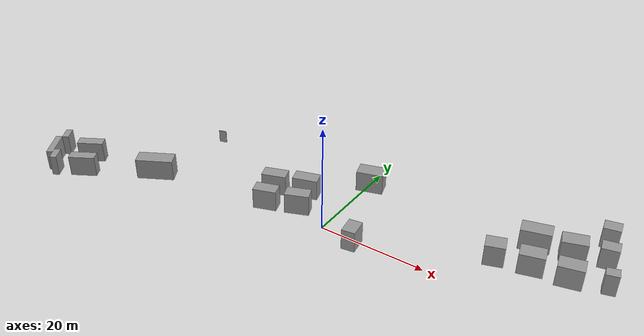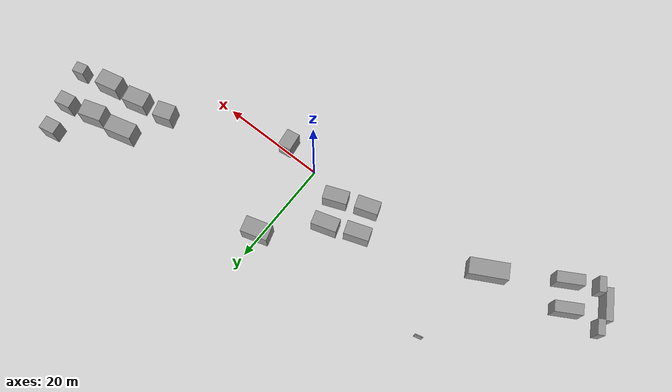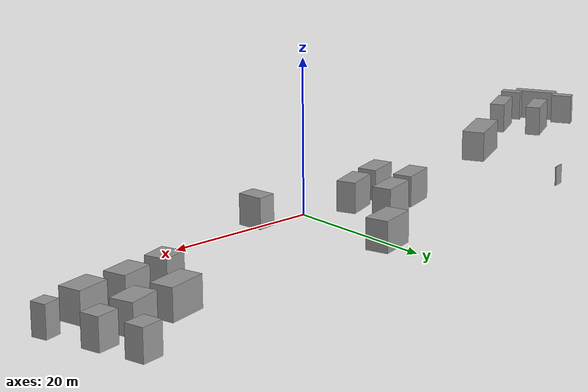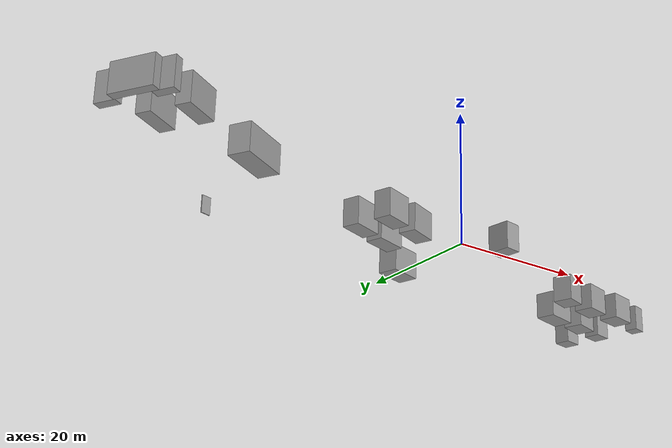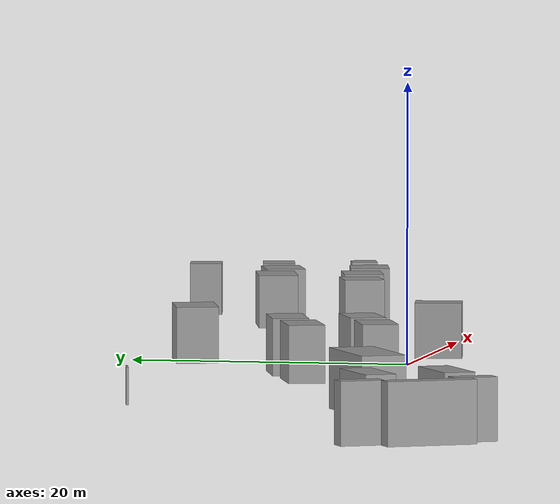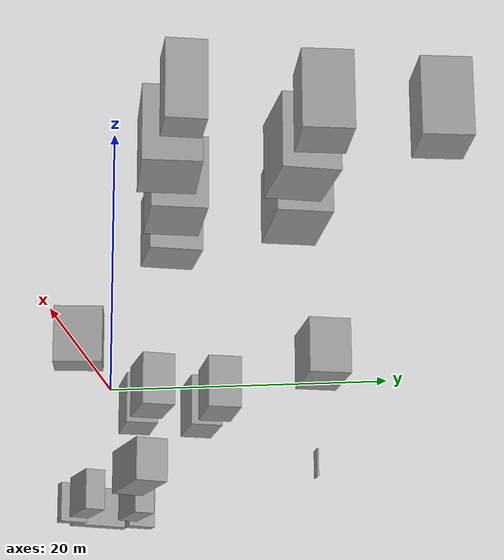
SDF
<?xml version='1.0'?>
<sdf version='1.7'>
  <model name='v0'>
    <pose>-4.57686 5.11966 0 0 -0 0</pose>
    <link name='Wall_16'>
      <collision name='Wall_16_Collision'>
        <geometry>
          <box>
            <size>2.80067 1.25 4</size>
          </box>
        </geometry>
        <pose>0 0 2 0 -0 0</pose>
      </collision>
      <visual name='Wall_16_Visual'>
        <pose>0 0 2 0 -0 0</pose>
        <geometry>
          <box>
            <size>2.80067 1.25 4</size>
          </box>
        </geometry>
        <material>
          <script>
            <uri>file://media/materials/scripts/gazebo.material</uri>
            <name>Gazebo/Grey</name>
          </script>
          <ambient>1 1 1 1</ambient>
        </material>
        <meta>
          <layer>0</layer>
        </meta>
      </visual>
      <pose>-47.8196 -19.0662 0 0 -0 2.09418</pose>
    </link>
    <link name='Wall_18'>
      <collision name='Wall_18_Collision'>
        <geometry>
          <box>
            <size>2.80018 1.25 4</size>
          </box>
        </geometry>
        <pose>0 0 2 0 -0 0</pose>
      </collision>
      <visual name='Wall_18_Visual'>
        <pose>0 0 2 0 -0 0</pose>
        <geometry>
          <box>
            <size>2.80018 1.25 4</size>
          </box>
        </geometry>
        <material>
          <script>
            <uri>file://media/materials/scripts/gazebo.material</uri>
            <name>Gazebo/Grey</name>
          </script>
          <ambient>1 1 1 1</ambient>
        </material>
        <meta>
          <layer>0</layer>
        </meta>
      </visual>
      <pose>-51.5376 -12.6602 0 0 -0 2.09418</pose>
    </link>
    <link name='Wall_20'>
      <collision name='Wall_20_Collision'>
        <geometry>
          <box>
            <size>5.80026 1.25 4</size>
          </box>
        </geometry>
        <pose>0 0 2 0 -0 0</pose>
      </collision>
      <visual name='Wall_20_Visual'>
        <pose>0 0 2 0 -0 0</pose>
        <geometry>
          <box>
            <size>5.80026 1.25 4</size>
          </box>
        </geometry>
        <material>
          <script>
            <uri>file://media/materials/scripts/gazebo.material</uri>
            <name>Gazebo/Grey</name>
          </script>
          <ambient>1 1 1 1</ambient>
        </material>
        <meta>
          <layer>0</layer>
        </meta>
      </visual>
      <pose>-50.5566 -16.8352 0 0 -0 -1.04726</pose>
    </link>
    <link name='Wall_23'>
      <collision name='Wall_23_Collision'>
        <geometry>
          <box>
            <size>5 2 4</size>
          </box>
        </geometry>
        <pose>0 0 2 0 -0 0</pose>
      </collision>
      <visual name='Wall_23_Visual'>
        <pose>0 0 2 0 -0 0</pose>
        <geometry>
          <box>
            <size>5 2 4</size>
          </box>
        </geometry>
        <material>
          <script>
            <uri>file://media/materials/scripts/gazebo.material</uri>
            <name>Gazebo/Grey</name>
          </script>
          <ambient>1 1 1 1</ambient>
        </material>
        <meta>
          <layer>0</layer>
        </meta>
      </visual>
      <pose>-45.4711 -12.0217 0 0 -0 0.523611</pose>
    </link>
    <link name='Wall_29'>
      <collision name='Wall_29_Collision'>
        <geometry>
          <box>
            <size>5 2 4</size>
          </box>
        </geometry>
        <pose>0 0 2 0 -0 0</pose>
      </collision>
      <visual name='Wall_29_Visual'>
        <pose>0 0 2 0 -0 0</pose>
        <geometry>
          <box>
            <size>5 2 4</size>
          </box>
        </geometry>
        <material>
          <script>
            <uri>file://media/materials/scripts/gazebo.material</uri>
            <name>Gazebo/Grey</name>
          </script>
          <ambient>1 1 1 1</ambient>
        </material>
        <meta>
          <layer>0</layer>
        </meta>
      </visual>
      <pose>-42.9711 -16.5337 0 0 -0 0.523611</pose>
    </link>
    <link name='Wall_31'>
      <collision name='Wall_31_Collision'>
        <geometry>
          <box>
            <size>7.07571 3 4</size>
          </box>
        </geometry>
        <pose>0 0 2 0 -0 0</pose>
      </collision>
      <visual name='Wall_31_Visual'>
        <pose>0 0 2 0 -0 0</pose>
        <geometry>
          <box>
            <size>7.07571 3 4</size>
          </box>
        </geometry>
        <material>
          <script>
            <uri>file://media/materials/scripts/gazebo.material</uri>
            <name>Gazebo/Grey</name>
          </script>
          <ambient>1 1 1 1</ambient>
        </material>
        <meta>
          <layer>0</layer>
        </meta>
      </visual>
      <pose>-30.9972 -9.17397 0 0 -0 0.498005</pose>
    </link>
    <link name='Wall_34'>
      <collision name='Wall_34_Collision'>
        <geometry>
          <box>
            <size>4.34585 2.5 4</size>
          </box>
        </geometry>
        <pose>0 0 2 0 -0 0</pose>
      </collision>
      <visual name='Wall_34_Visual'>
        <pose>0 0 2 0 -0 0</pose>
        <geometry>
          <box>
            <size>4.34585 2.5 4</size>
          </box>
        </geometry>
        <material>
          <script>
            <uri>file://media/materials/scripts/gazebo.material</uri>
            <name>Gazebo/Grey</name>
          </script>
          <ambient>1 1 1 1</ambient>
        </material>
        <meta>
          <layer>0</layer>
        </meta>
      </visual>
      <pose>-7.57457 -5.21636 0 0 -0 0.327061</pose>
    </link>
    <link name='Wall_36'>
      <collision name='Wall_36_Collision'>
        <geometry>
          <box>
            <size>4.60603 2.5 4</size>
          </box>
        </geometry>
        <pose>0 0 2 0 -0 0</pose>
      </collision>
      <visual name='Wall_36_Visual'>
        <pose>0 0 2 0 -0 0</pose>
        <geometry>
          <box>
            <size>4.60603 2.5 4</size>
          </box>
        </geometry>
        <material>
          <script>
            <uri>file://media/materials/scripts/gazebo.material</uri>
            <name>Gazebo/Grey</name>
          </script>
          <ambient>1 1 1 1</ambient>
        </material>
        <meta>
          <layer>0</layer>
        </meta>
      </visual>
      <pose>-9.12461 -0.35226 0 0 -0 0.337818</pose>
    </link>
    <link name='Wall_38'>
      <collision name='Wall_38_Collision'>
        <geometry>
          <box>
            <size>4.72487 2.54 4</size>
          </box>
        </geometry>
        <pose>0 0 2 0 -0 0</pose>
      </collision>
      <visual name='Wall_38_Visual'>
        <pose>0 0 2 0 -0 0</pose>
        <geometry>
          <box>
            <size>4.72487 2.54 4</size>
          </box>
        </geometry>
        <material>
          <script>
            <uri>file://media/materials/scripts/gazebo.material</uri>
            <name>Gazebo/Grey</name>
          </script>
          <ambient>1 1 1 1</ambient>
        </material>
        <meta>
          <layer>0</layer>
        </meta>
      </visual>
      <pose>-3.60395 1.84813 0 0 -0 0.303513</pose>
    </link>
    <link name='Wall_40'>
      <collision name='Wall_40_Collision'>
        <geometry>
          <box>
            <size>4.51058 2.5 4</size>
          </box>
        </geometry>
        <pose>0 0 2 0 -0 0</pose>
      </collision>
      <visual name='Wall_40_Visual'>
        <pose>0 0 2 0 -0 0</pose>
        <geometry>
          <box>
            <size>4.51058 2.5 4</size>
          </box>
        </geometry>
        <material>
          <script>
            <uri>file://media/materials/scripts/gazebo.material</uri>
            <name>Gazebo/Grey</name>
          </script>
          <ambient>1 1 1 1</ambient>
        </material>
        <meta>
          <layer>0</layer>
        </meta>
      </visual>
      <pose>-2.00184 -3.14577 0 0 -0 -2.76115</pose>
    </link>
    <link name='Wall_44'>
      <collision name='Wall_44_Collision'>
        <geometry>
          <box>
            <size>4.99946 3 4</size>
          </box>
        </geometry>
        <pose>0 0 2 0 -0 0</pose>
      </collision>
      <visual name='Wall_44_Visual'>
        <pose>0 0 2 0 -0 0</pose>
        <geometry>
          <box>
            <size>4.99946 3 4</size>
          </box>
        </geometry>
        <material>
          <script>
            <uri>file://media/materials/scripts/gazebo.material</uri>
            <name>Gazebo/Grey</name>
          </script>
          <ambient>1 1 1 1</ambient>
        </material>
        <meta>
          <layer>0</layer>
        </meta>
      </visual>
      <pose>5.14874 10.4035 0 0 -0 0.291696</pose>
    </link>
    <link name='Wall_46'>
      <collision name='Wall_46_Collision'>
        <geometry>
          <box>
            <size>1.5 0.15 2.5</size>
          </box>
        </geometry>
        <pose>0 0 1.25 0 -0 0</pose>
      </collision>
      <visual name='Wall_46_Visual'>
        <pose>0 0 1.25 0 -0 0</pose>
        <geometry>
          <box>
            <size>1.5 0.15 2.5</size>
          </box>
        </geometry>
        <material>
          <script>
            <uri>file://media/materials/scripts/gazebo.material</uri>
            <name>Gazebo/Grey</name>
          </script>
          <ambient>1 1 1 1</ambient>
        </material>
        <meta>
          <layer>0</layer>
        </meta>
      </visual>
      <pose>-28.3438 7.46361 0 0 -0 -2.87979</pose>
    </link>
    <link name='Wall_50'>
      <collision name='Wall_50_Collision'>
        <geometry>
          <box>
            <size>3.5 3 4</size>
          </box>
        </geometry>
        <pose>0 0 2 0 -0 0</pose>
      </collision>
      <visual name='Wall_50_Visual'>
        <pose>0 0 2 0 -0 0</pose>
        <geometry>
          <box>
            <size>3.5 3 4</size>
          </box>
        </geometry>
        <material>
          <script>
            <uri>file://media/materials/scripts/gazebo.material</uri>
            <name>Gazebo/Grey</name>
          </script>
          <ambient>1 1 1 1</ambient>
        </material>
        <meta>
          <layer>0</layer>
        </meta>
      </visual>
      <pose>33.1029 3.77234 0 0 -0 0.321751</pose>
    </link>
    <link name='Wall_52'>
      <collision name='Wall_52_Collision'>
        <geometry>
          <box>
            <size>4.3499 3 4</size>
          </box>
        </geometry>
        <pose>0 0 2 0 -0 0</pose>
      </collision>
      <visual name='Wall_52_Visual'>
        <pose>0 0 2 0 -0 0</pose>
        <geometry>
          <box>
            <size>4.3499 3 4</size>
          </box>
        </geometry>
        <material>
          <script>
            <uri>file://media/materials/scripts/gazebo.material</uri>
            <name>Gazebo/Grey</name>
          </script>
          <ambient>1 1 1 1</ambient>
        </material>
        <meta>
          <layer>0</layer>
        </meta>
      </visual>
      <pose>39.1266 4.91313 0 0 -0 0.261509</pose>
    </link>
    <link name='Wall_54'>
      <collision name='Wall_54_Collision'>
        <geometry>
          <box>
            <size>4.42155 3 4</size>
          </box>
        </geometry>
        <pose>0 0 2 0 -0 0</pose>
      </collision>
      <visual name='Wall_54_Visual'>
        <pose>0 0 2 0 -0 0</pose>
        <geometry>
          <box>
            <size>4.42155 3 4</size>
          </box>
        </geometry>
        <material>
          <script>
            <uri>file://media/materials/scripts/gazebo.material</uri>
            <name>Gazebo/Grey</name>
          </script>
          <ambient>1 1 1 1</ambient>
        </material>
        <meta>
          <layer>0</layer>
        </meta>
      </visual>
      <pose>45.4187 5.57565 0 0 -0 0.223626</pose>
    </link>
    <link name='Wall_56'>
      <collision name='Wall_56_Collision'>
        <geometry>
          <box>
            <size>5.35027 3 4</size>
          </box>
        </geometry>
        <pose>0 0 2 0 -0 0</pose>
      </collision>
      <visual name='Wall_56_Visual'>
        <pose>0 0 2 0 -0 0</pose>
        <geometry>
          <box>
            <size>5.35027 3 4</size>
          </box>
        </geometry>
        <material>
          <script>
            <uri>file://media/materials/scripts/gazebo.material</uri>
            <name>Gazebo/Grey</name>
          </script>
          <ambient>1 1 1 1</ambient>
        </material>
        <meta>
          <layer>0</layer>
        </meta>
      </visual>
      <pose>37.2352 11.2357 0 0 -0 0.26211</pose>
    </link>
    <link name='Wall_58'>
      <collision name='Wall_58_Collision'>
        <geometry>
          <box>
            <size>4.41995 3 4</size>
          </box>
        </geometry>
        <pose>0 0 2 0 -0 0</pose>
      </collision>
      <visual name='Wall_58_Visual'>
        <pose>0 0 2 0 -0 0</pose>
        <geometry>
          <box>
            <size>4.41995 3 4</size>
          </box>
        </geometry>
        <material>
          <script>
            <uri>file://media/materials/scripts/gazebo.material</uri>
            <name>Gazebo/Grey</name>
          </script>
          <ambient>1 1 1 1</ambient>
        </material>
        <meta>
          <layer>0</layer>
        </meta>
      </visual>
      <pose>43.5899 12.0497 0 0 -0 0.313698</pose>
    </link>
    <link name='Wall_60'>
      <collision name='Wall_60_Collision'>
        <geometry>
          <box>
            <size>3.06617 2.5 4</size>
          </box>
        </geometry>
        <pose>0 0 2 0 -0 0</pose>
      </collision>
      <visual name='Wall_60_Visual'>
        <pose>0 0 2 0 -0 0</pose>
        <geometry>
          <box>
            <size>3.06617 2.5 4</size>
          </box>
        </geometry>
        <material>
          <script>
            <uri>file://media/materials/scripts/gazebo.material</uri>
            <name>Gazebo/Grey</name>
          </script>
          <ambient>1 1 1 1</ambient>
        </material>
        <meta>
          <layer>0</layer>
        </meta>
      </visual>
      <pose>49.0829 13.548 0 0 -0 0.209078</pose>
    </link>
    <link name='Wall_63'>
      <collision name='Wall_63_Collision'>
        <geometry>
          <box>
            <size>3.012 2.5 4</size>
          </box>
        </geometry>
        <pose>0 0 2 0 -0 0</pose>
      </collision>
      <visual name='Wall_63_Visual'>
        <pose>0 0 2 0 -0 0</pose>
        <geometry>
          <box>
            <size>3.012 2.5 4</size>
          </box>
        </geometry>
        <material>
          <script>
            <uri>file://media/materials/scripts/gazebo.material</uri>
            <name>Gazebo/Grey</name>
          </script>
          <ambient>1 1 1 1</ambient>
        </material>
        <meta>
          <layer>0</layer>
        </meta>
      </visual>
      <pose>47.5789 19.0721 0 0 -0 0.195981</pose>
    </link>
    <link name='Wall_65'>
      <collision name='Wall_65_Collision'>
        <geometry>
          <box>
            <size>2.25 2 4</size>
          </box>
        </geometry>
        <pose>0 0 2 0 -0 0</pose>
      </collision>
      <visual name='Wall_65_Visual'>
        <pose>0 0 2 0 -0 0</pose>
        <geometry>
          <box>
            <size>2.25 2 4</size>
          </box>
        </geometry>
        <material>
          <script>
            <uri>file://media/materials/scripts/gazebo.material</uri>
            <name>Gazebo/Grey</name>
          </script>
          <ambient>1 1 1 1</ambient>
        </material>
        <meta>
          <layer>0</layer>
        </meta>
      </visual>
      <pose>51.4333 7.1847 0 0 -0 0.261799</pose>
    </link>
    <link name='Wall_67'>
      <collision name='Wall_67_Collision'>
        <geometry>
          <box>
            <size>3.38391 2.5 4</size>
          </box>
        </geometry>
        <pose>0 0 2 0 -0 0</pose>
      </collision>
      <visual name='Wall_67_Visual'>
        <pose>0 0 2 0 -0 0</pose>
        <geometry>
          <box>
            <size>3.38391 2.5 4</size>
          </box>
        </geometry>
        <material>
          <script>
            <uri>file://media/materials/scripts/gazebo.material</uri>
            <name>Gazebo/Grey</name>
          </script>
          <ambient>1 1 1 1</ambient>
        </material>
        <meta>
          <layer>0</layer>
        </meta>
      </visual>
      <pose>11.3429 -6.12966 0 0 -0 1.72069</pose>
    </link>
    <static>1</static>
  </model>
</sdf>
